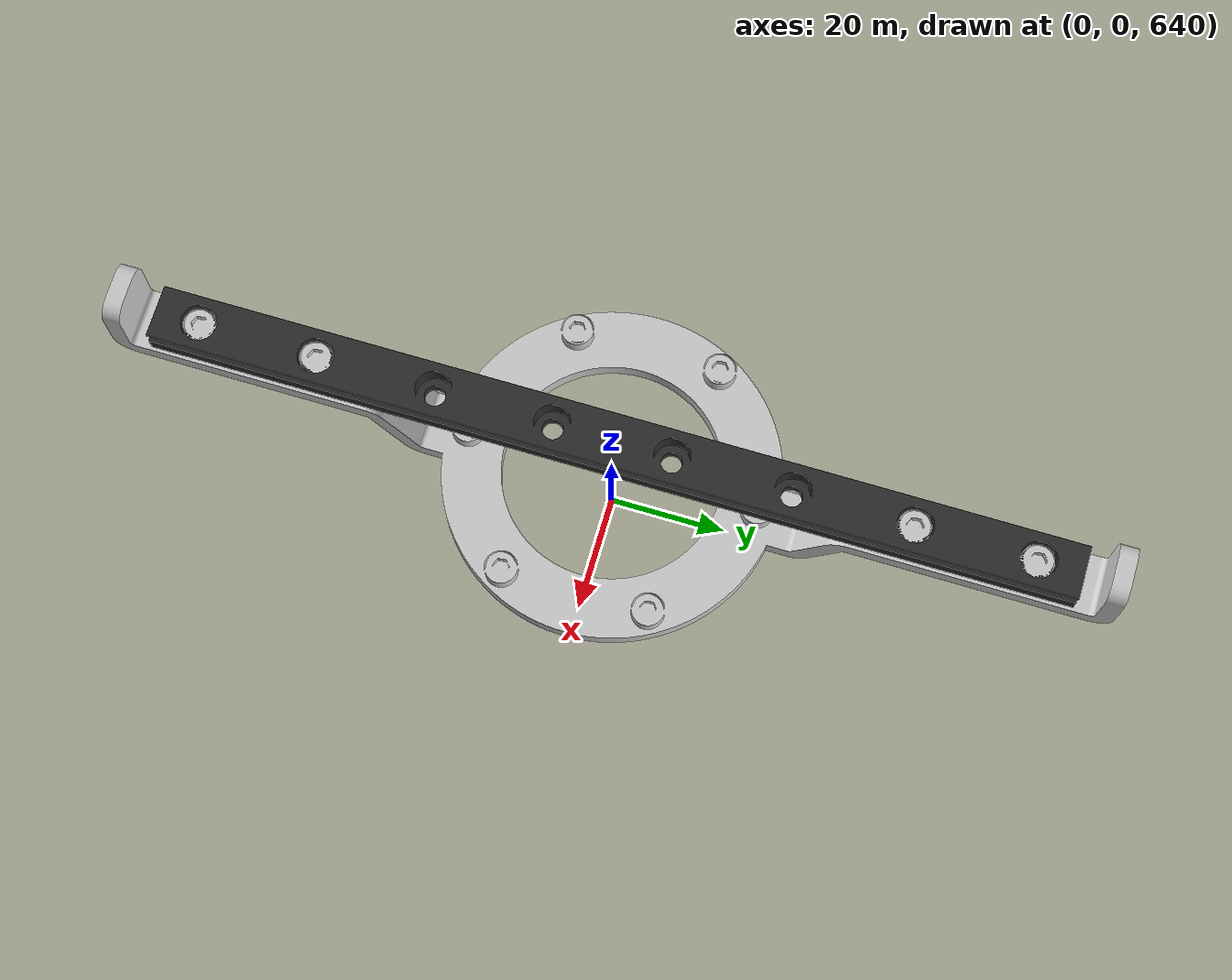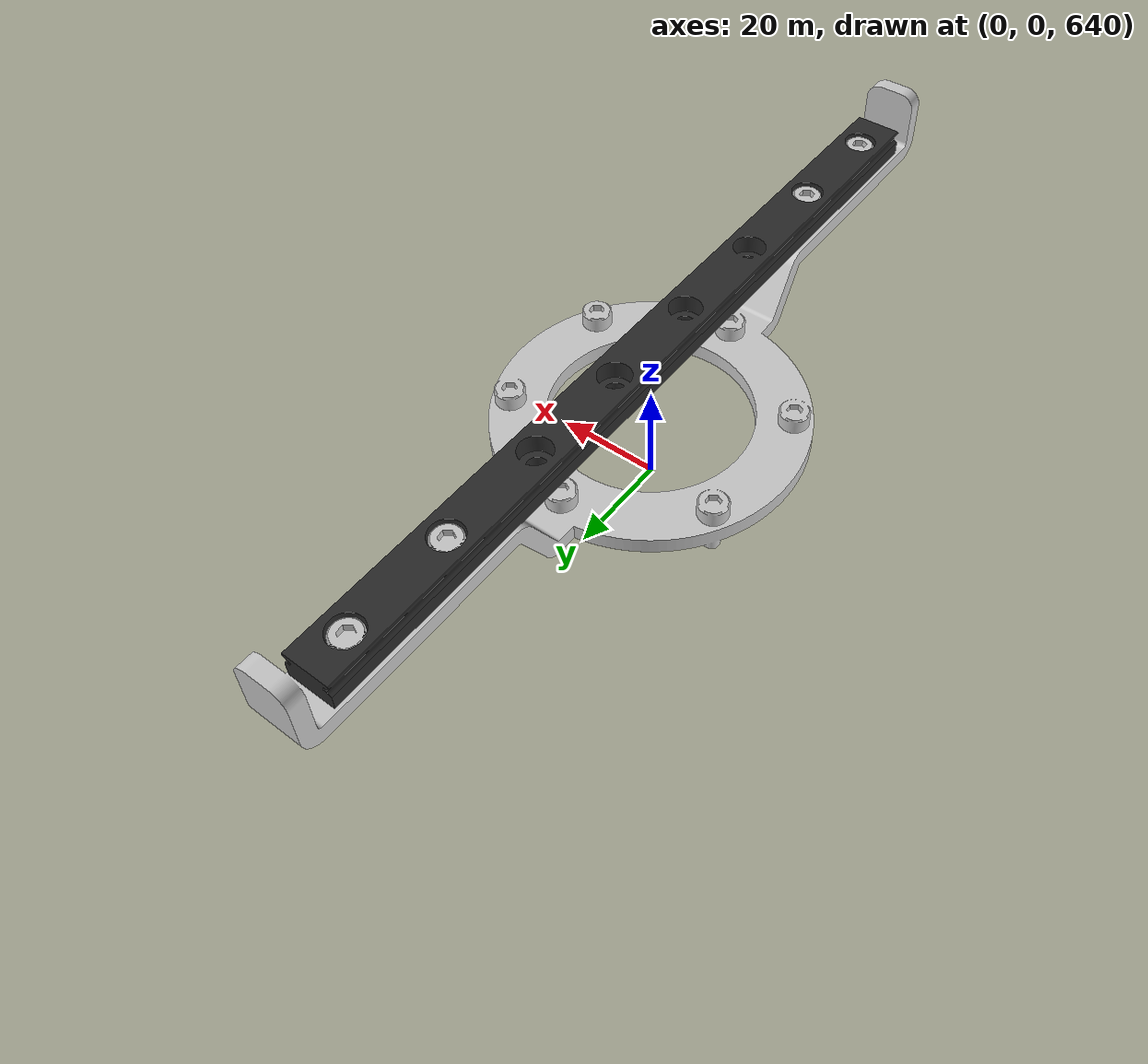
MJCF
<mujoco model="hand">
  <default>
    <default class="visual">
      <geom group="2" type="mesh" contype="0" conaffinity="0"/>
    </default>
    <default class="collision">
      <geom group="3" type="mesh"/>
    </default>
  </default>
  <asset>
    <material name="material_hand_0" specular="0.20000000000000004" shininess="1.0" rgba="0.79607843 0.79607843 0.79607843 1.0"/>
    <material name="material_hand_1" specular="0.20000000000000004" shininess="1.0" rgba="0.16862745 0.16862745 0.16862745 1.0"/>
    <mesh file="hand_0.obj"/>
    <mesh file="hand_1.obj"/>
  </asset>
  <worldbody>
    <body name="hand">
      <geom mesh="hand_0" material="material_hand_1" class="visual"/>
      <geom mesh="hand_1" material="material_hand_0" class="visual"/>
      <geom mesh="hand_0" class="collision"/>
      <geom mesh="hand_1" class="collision"/>
    </body>
  </worldbody>
</mujoco>
